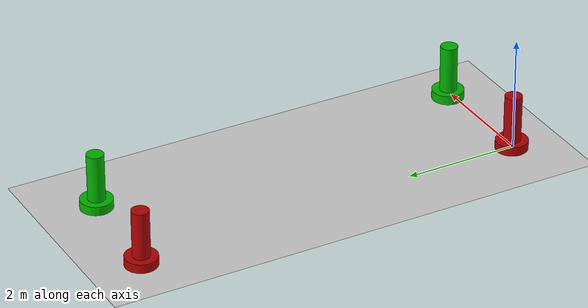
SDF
<?xml version='1.0' encoding='ASCII'?>
<sdf version='1.6'>
  <world name='default'>
    <gui fullscreen='false'>
      <camera name='user_camera'>
        <pose>6.90191 -4.1168 2.2611 0 0.275643 2.3562</pose>
        <view_controller>orbit</view_controller>
        <projection_type>perspective</projection_type>
      </camera>
    </gui>
    <light name='sun' type='directional'>
      <cast_shadows>1</cast_shadows>
      <pose>0 0 10 0 -0 0</pose>
      <diffuse>0.8 0.8 0.8 1</diffuse>
      <specular>0.2 0.2 0.2 1</specular>
      <attenuation>
        <range>1000</range>
        <constant>0.9</constant>
        <linear>0.01</linear>
        <quadratic>0.001</quadratic>
      </attenuation>
      <direction>-0.5 0.1 -0.9</direction>
      <spot>
        <inner_angle>0</inner_angle>
        <outer_angle>0</outer_angle>
        <falloff>0</falloff>
      </spot>
    </light>
    <model name='ground_plane'>
      <static>1</static>
      <link name='link'>
        <collision name='collision'>
          <geometry>
            <plane>
              <normal>0 0 1</normal>
              <size>100 100</size>
            </plane>
          </geometry>
          <surface>
            <contact>
              <collide_bitmask>65535</collide_bitmask>
              <ode/>
            </contact>
            <friction>
              <ode>
                <mu>100</mu>
                <mu2>50</mu2>
              </ode>
              <torsional>
                <ode/>
              </torsional>
            </friction>
            <bounce/>
          </surface>
          <max_contacts>10</max_contacts>
        </collision>
        <visual name='visual'>
          <cast_shadows>0</cast_shadows>
          <geometry>
            <plane>
              <normal>0 0 1</normal>
              <size>100 100</size>
            </plane>
          </geometry>
          <material>
            <script>
              <uri>file://media/materials/scripts/gazebo.material</uri>
              <name>Gazebo/Grey</name>
            </script>
          </material>
        </visual>
        <self_collide>0</self_collide>
        <enable_wind>0</enable_wind>
        <kinematic>0</kinematic>
      </link>
    </model>
    <gravity>0 0 -9.8</gravity>
    <magnetic_field>6e-06 2.3e-05 -4.2e-05</magnetic_field>
    <atmosphere type='adiabatic'/>
    <physics type='ode'>
      <max_step_size>0.001</max_step_size>
      <real_time_factor>1</real_time_factor>
      <real_time_update_rate>1000</real_time_update_rate>
    </physics>
    <scene>
      <ambient>0.4 0.4 0.4 1</ambient>
      <background>0.7 0.7 0.7 1</background>
      <shadows>1</shadows>
    </scene>
    <wind/>
    <spherical_coordinates>
      <surface_model>EARTH_WGS84</surface_model>
      <latitude_deg>0</latitude_deg>
      <longitude_deg>0</longitude_deg>
      <elevation>0</elevation>
      <heading_deg>0</heading_deg>
    </spherical_coordinates>
    <model name='Bouyo_red'>
      <link name='link_1'>
        <inertial>
          <mass>0.068793</mass>
          <inertia>
            <ixx>0.00543853</ixx>
            <ixy>0</ixy>
            <ixz>0</ixz>
            <iyy>0.00543853</iyy>
            <iyz>0</iyz>
            <izz>0.0006256</izz>
          </inertia>
          <pose>0 0 0 0 -0 0</pose>
        </inertial>
        <pose>0.396646 -0.775352 0.496472 0 -0 0</pose>
        <gravity>1</gravity>
        <self_collide>0</self_collide>
        <kinematic>0</kinematic>
        <enable_wind>0</enable_wind>
        <visual name='visual'>
          <pose>0 0 0 0 -0 0</pose>
          <geometry>
            <cylinder>
              <radius>0.15</radius>
              <length>1</length>
            </cylinder>
          </geometry>
          <material>
            <lighting>1</lighting>
            <script>
              <uri>file://media/materials/scripts/gazebo.material</uri>
              <name>Gazebo/Grey</name>
            </script>
            <shader type='pixel'>
              <normal_map>__default__</normal_map>
            </shader>
            <ambient>0.3 0.3 0.3 1</ambient>
            <diffuse>0.7 0 0 1</diffuse>
            <specular>0.01 0.01 0.01 1</specular>
            <emissive>0 0 0 1</emissive>
          </material>
          <transparency>0</transparency>
          <cast_shadows>1</cast_shadows>
        </visual>
        <collision name='collision'>
          <laser_retro>0</laser_retro>
          <max_contacts>10</max_contacts>
          <pose>0 0 0 0 -0 0</pose>
          <geometry>
            <cylinder>
              <radius>0.3</radius>
              <length>0.945576</length>
            </cylinder>
          </geometry>
          <surface>
            <friction>
              <ode>
                <mu>1</mu>
                <mu2>1</mu2>
                <fdir1>0 0 0</fdir1>
                <slip1>0</slip1>
                <slip2>0</slip2>
              </ode>
              <torsional>
                <coefficient>1</coefficient>
                <patch_radius>0</patch_radius>
                <surface_radius>0</surface_radius>
                <use_patch_radius>1</use_patch_radius>
                <ode>
                  <slip>0</slip>
                </ode>
              </torsional>
            </friction>
            <bounce>
              <restitution_coefficient>0</restitution_coefficient>
              <threshold>1e+06</threshold>
            </bounce>
            <contact>
              <collide_without_contact>0</collide_without_contact>
              <collide_without_contact_bitmask>1</collide_without_contact_bitmask>
              <collide_bitmask>1</collide_bitmask>
              <ode>
                <soft_cfm>0</soft_cfm>
                <soft_erp>0.2</soft_erp>
                <kp>1e+13</kp>
                <kd>1</kd>
                <max_vel>0.01</max_vel>
                <min_depth>0</min_depth>
              </ode>
              <bullet>
                <split_impulse>1</split_impulse>
                <split_impulse_penetration_threshold>-0.01</split_impulse_penetration_threshold>
                <soft_cfm>0</soft_cfm>
                <soft_erp>0.2</soft_erp>
                <kp>1e+13</kp>
                <kd>1</kd>
              </bullet>
            </contact>
          </surface>
        </collision>
      </link>
      <link name='link_3'>
        <inertial>
          <mass>0.0961519</mass>
          <inertia>
            <ixx>0.00264433</ixx>
            <ixy>0</ixy>
            <ixz>0</ixz>
            <iyy>0.00264433</iyy>
            <iyz>0</iyz>
            <izz>0.00382696</izz>
          </inertia>
          <pose>0 0 0 0 -0 0</pose>
        </inertial>
        <pose>0.399215 -0.772784 0.003528 0 -0 0</pose>
        <gravity>1</gravity>
        <self_collide>0</self_collide>
        <kinematic>0</kinematic>
        <enable_wind>0</enable_wind>
        <visual name='visual'>
          <pose>0 0 0 0 -0 0</pose>
          <geometry>
            <cylinder>
              <radius>0.282139</radius>
              <length>0.302013</length>
            </cylinder>
          </geometry>
          <material>
            <lighting>1</lighting>
            <script>
              <uri>file://media/materials/scripts/gazebo.material</uri>
              <name>Gazebo/Grey</name>
            </script>
            <shader type='pixel'>
              <normal_map>__default__</normal_map>
            </shader>
            <ambient>0.3 0.3 0.3 1</ambient>
            <diffuse>0.7 0 0 1</diffuse>
            <specular>0.01 0.01 0.01 1</specular>
            <emissive>0 0 0 1</emissive>
          </material>
          <transparency>0</transparency>
          <cast_shadows>1</cast_shadows>
        </visual>
        <collision name='collision'>
          <laser_retro>0</laser_retro>
          <max_contacts>10</max_contacts>
          <pose>0 0 0 0 -0 0</pose>
          <geometry>
            <cylinder>
              <radius>0.282139</radius>
              <length>0.302013</length>
            </cylinder>
          </geometry>
          <surface>
            <friction>
              <ode>
                <mu>1</mu>
                <mu2>1</mu2>
                <fdir1>0 0 0</fdir1>
                <slip1>0</slip1>
                <slip2>0</slip2>
              </ode>
              <torsional>
                <coefficient>1</coefficient>
                <patch_radius>0</patch_radius>
                <surface_radius>0</surface_radius>
                <use_patch_radius>1</use_patch_radius>
                <ode>
                  <slip>0</slip>
                </ode>
              </torsional>
            </friction>
            <bounce>
              <restitution_coefficient>0</restitution_coefficient>
              <threshold>1e+06</threshold>
            </bounce>
            <contact>
              <collide_without_contact>0</collide_without_contact>
              <collide_without_contact_bitmask>1</collide_without_contact_bitmask>
              <collide_bitmask>1</collide_bitmask>
              <ode>
                <soft_cfm>0</soft_cfm>
                <soft_erp>0.2</soft_erp>
                <kp>1e+13</kp>
                <kd>1</kd>
                <max_vel>0.01</max_vel>
                <min_depth>0</min_depth>
              </ode>
              <bullet>
                <split_impulse>1</split_impulse>
                <split_impulse_penetration_threshold>-0.01</split_impulse_penetration_threshold>
                <soft_cfm>0</soft_cfm>
                <soft_erp>0.2</soft_erp>
                <kp>1e+13</kp>
                <kd>1</kd>
              </bullet>
            </contact>
          </surface>
        </collision>
      </link>
      <static>0</static>
      <allow_auto_disable>1</allow_auto_disable>
      <pose>-0.410253 0.804437 0.003528 0 -0 0</pose>
    </model>
    <model name='Bouyo'>
      <link name='link_1'>
        <inertial>
          <mass>0.068793</mass>
          <inertia>
            <ixx>0.00543853</ixx>
            <ixy>0</ixy>
            <ixz>0</ixz>
            <iyy>0.00543853</iyy>
            <iyz>0</iyz>
            <izz>0.0006256</izz>
          </inertia>
          <pose>0 0 0 0 -0 0</pose>
        </inertial>
        <pose>0.396646 -0.775352 0.496472 0 -0 0</pose>
        <gravity>1</gravity>
        <self_collide>0</self_collide>
        <kinematic>0</kinematic>
        <enable_wind>0</enable_wind>
        <visual name='visual'>
          <pose>0 0 0 0 -0 0</pose>
          <geometry>
            <cylinder>
              <radius>0.15</radius>
              <length>1</length>
            </cylinder>
          </geometry>
          <material>
            <lighting>1</lighting>
            <script>
              <uri>file://media/materials/scripts/gazebo.material</uri>
              <name>Gazebo/Grey</name>
            </script>
            <shader type='pixel'>
              <normal_map>__default__</normal_map>
            </shader>
            <ambient>0.3 0.3 0.3 1</ambient>
            <diffuse>0 0.7 0 1</diffuse>
            <specular>0.01 0.01 0.01 1</specular>
            <emissive>0 0 0 1</emissive>
          </material>
          <transparency>0</transparency>
          <cast_shadows>1</cast_shadows>
        </visual>
        <collision name='collision'>
          <laser_retro>0</laser_retro>
          <max_contacts>10</max_contacts>
          <pose>0 0 0 0 -0 0</pose>
          <geometry>
            <cylinder>
              <radius>0.3</radius>
              <length>0.945576</length>
            </cylinder>
          </geometry>
          <surface>
            <friction>
              <ode>
                <mu>1</mu>
                <mu2>1</mu2>
                <fdir1>0 0 0</fdir1>
                <slip1>0</slip1>
                <slip2>0</slip2>
              </ode>
              <torsional>
                <coefficient>1</coefficient>
                <patch_radius>0</patch_radius>
                <surface_radius>0</surface_radius>
                <use_patch_radius>1</use_patch_radius>
                <ode>
                  <slip>0</slip>
                </ode>
              </torsional>
            </friction>
            <bounce>
              <restitution_coefficient>0</restitution_coefficient>
              <threshold>1e+06</threshold>
            </bounce>
            <contact>
              <collide_without_contact>0</collide_without_contact>
              <collide_without_contact_bitmask>1</collide_without_contact_bitmask>
              <collide_bitmask>1</collide_bitmask>
              <ode>
                <soft_cfm>0</soft_cfm>
                <soft_erp>0.2</soft_erp>
                <kp>1e+13</kp>
                <kd>1</kd>
                <max_vel>0.01</max_vel>
                <min_depth>0</min_depth>
              </ode>
              <bullet>
                <split_impulse>1</split_impulse>
                <split_impulse_penetration_threshold>-0.01</split_impulse_penetration_threshold>
                <soft_cfm>0</soft_cfm>
                <soft_erp>0.2</soft_erp>
                <kp>1e+13</kp>
                <kd>1</kd>
              </bullet>
            </contact>
          </surface>
        </collision>
      </link>
      <link name='link_3'>
        <inertial>
          <mass>0.0961519</mass>
          <inertia>
            <ixx>0.00264433</ixx>
            <ixy>0</ixy>
            <ixz>0</ixz>
            <iyy>0.00264433</iyy>
            <iyz>0</iyz>
            <izz>0.00382696</izz>
          </inertia>
          <pose>0 0 0 0 -0 0</pose>
        </inertial>
        <pose>0.399215 -0.772784 0.003528 0 -0 0</pose>
        <gravity>1</gravity>
        <self_collide>0</self_collide>
        <kinematic>0</kinematic>
        <enable_wind>0</enable_wind>
        <visual name='visual'>
          <pose>0 0 0 0 -0 0</pose>
          <geometry>
            <cylinder>
              <radius>0.282139</radius>
              <length>0.302013</length>
            </cylinder>
          </geometry>
          <material>
            <lighting>1</lighting>
            <script>
              <uri>file://media/materials/scripts/gazebo.material</uri>
              <name>Gazebo/Grey</name>
            </script>
            <shader type='pixel'>
              <normal_map>__default__</normal_map>
            </shader>
            <ambient>0.3 0.3 0.3 1</ambient>
            <diffuse>0 0.7 0 1</diffuse>
            <specular>0.01 0.01 0.01 1</specular>
            <emissive>0 0 0 1</emissive>
          </material>
          <transparency>0</transparency>
          <cast_shadows>1</cast_shadows>
        </visual>
        <collision name='collision'>
          <laser_retro>0</laser_retro>
          <max_contacts>10</max_contacts>
          <pose>0 0 0 0 -0 0</pose>
          <geometry>
            <cylinder>
              <radius>0.282139</radius>
              <length>0.302013</length>
            </cylinder>
          </geometry>
          <surface>
            <friction>
              <ode>
                <mu>1</mu>
                <mu2>1</mu2>
                <fdir1>0 0 0</fdir1>
                <slip1>0</slip1>
                <slip2>0</slip2>
              </ode>
              <torsional>
                <coefficient>1</coefficient>
                <patch_radius>0</patch_radius>
                <surface_radius>0</surface_radius>
                <use_patch_radius>1</use_patch_radius>
                <ode>
                  <slip>0</slip>
                </ode>
              </torsional>
            </friction>
            <bounce>
              <restitution_coefficient>0</restitution_coefficient>
              <threshold>1e+06</threshold>
            </bounce>
            <contact>
              <collide_without_contact>0</collide_without_contact>
              <collide_without_contact_bitmask>1</collide_without_contact_bitmask>
              <collide_bitmask>1</collide_bitmask>
              <ode>
                <soft_cfm>0</soft_cfm>
                <soft_erp>0.2</soft_erp>
                <kp>1e+13</kp>
                <kd>1</kd>
                <max_vel>0.01</max_vel>
                <min_depth>0</min_depth>
              </ode>
              <bullet>
                <split_impulse>1</split_impulse>
                <split_impulse_penetration_threshold>-0.01</split_impulse_penetration_threshold>
                <soft_cfm>0</soft_cfm>
                <soft_erp>0.2</soft_erp>
                <kp>1e+13</kp>
                <kd>1</kd>
              </bullet>
            </contact>
          </surface>
        </collision>
      </link>
      <static>0</static>
      <allow_auto_disable>1</allow_auto_disable>
      <pose>1.57263 0.860683 0 0 -0 0</pose>
    </model>
    <model name='Bouyo_red_0'>
      <link name='link_1'>
        <inertial>
          <mass>0.068793</mass>
          <inertia>
            <ixx>0.00543853</ixx>
            <ixy>0</ixy>
            <ixz>0</ixz>
            <iyy>0.00543853</iyy>
            <iyz>0</iyz>
            <izz>0.0006256</izz>
          </inertia>
          <pose>0 0 0 0 -0 0</pose>
        </inertial>
        <pose>0.396646 -0.775352 0.496472 0 -0 0</pose>
        <gravity>1</gravity>
        <self_collide>0</self_collide>
        <kinematic>0</kinematic>
        <enable_wind>0</enable_wind>
        <visual name='visual'>
          <pose>0 0 0 0 -0 0</pose>
          <geometry>
            <cylinder>
              <radius>0.15</radius>
              <length>1</length>
            </cylinder>
          </geometry>
          <material>
            <lighting>1</lighting>
            <script>
              <uri>file://media/materials/scripts/gazebo.material</uri>
              <name>Gazebo/Grey</name>
            </script>
            <shader type='pixel'>
              <normal_map>__default__</normal_map>
            </shader>
            <ambient>0.3 0.3 0.3 1</ambient>
            <diffuse>0.7 0 0 1</diffuse>
            <specular>0.01 0.01 0.01 1</specular>
            <emissive>0 0 0 1</emissive>
          </material>
          <transparency>0</transparency>
          <cast_shadows>1</cast_shadows>
        </visual>
        <collision name='collision'>
          <laser_retro>0</laser_retro>
          <max_contacts>10</max_contacts>
          <pose>0 0 0 0 -0 0</pose>
          <geometry>
            <cylinder>
              <radius>0.3</radius>
              <length>0.945576</length>
            </cylinder>
          </geometry>
          <surface>
            <friction>
              <ode>
                <mu>1</mu>
                <mu2>1</mu2>
                <fdir1>0 0 0</fdir1>
                <slip1>0</slip1>
                <slip2>0</slip2>
              </ode>
              <torsional>
                <coefficient>1</coefficient>
                <patch_radius>0</patch_radius>
                <surface_radius>0</surface_radius>
                <use_patch_radius>1</use_patch_radius>
                <ode>
                  <slip>0</slip>
                </ode>
              </torsional>
            </friction>
            <bounce>
              <restitution_coefficient>0</restitution_coefficient>
              <threshold>1e+06</threshold>
            </bounce>
            <contact>
              <collide_without_contact>0</collide_without_contact>
              <collide_without_contact_bitmask>1</collide_without_contact_bitmask>
              <collide_bitmask>1</collide_bitmask>
              <ode>
                <soft_cfm>0</soft_cfm>
                <soft_erp>0.2</soft_erp>
                <kp>1e+13</kp>
                <kd>1</kd>
                <max_vel>0.01</max_vel>
                <min_depth>0</min_depth>
              </ode>
              <bullet>
                <split_impulse>1</split_impulse>
                <split_impulse_penetration_threshold>-0.01</split_impulse_penetration_threshold>
                <soft_cfm>0</soft_cfm>
                <soft_erp>0.2</soft_erp>
                <kp>1e+13</kp>
                <kd>1</kd>
              </bullet>
            </contact>
          </surface>
        </collision>
      </link>
      <link name='link_3'>
        <inertial>
          <mass>0.0961519</mass>
          <inertia>
            <ixx>0.00264433</ixx>
            <ixy>0</ixy>
            <ixz>0</ixz>
            <iyy>0.00264433</iyy>
            <iyz>0</iyz>
            <izz>0.00382696</izz>
          </inertia>
          <pose>0 0 0 0 -0 0</pose>
        </inertial>
        <pose>0.399215 -0.772784 0.003528 0 -0 0</pose>
        <gravity>1</gravity>
        <self_collide>0</self_collide>
        <kinematic>0</kinematic>
        <enable_wind>0</enable_wind>
        <visual name='visual'>
          <pose>0 0 0 0 -0 0</pose>
          <geometry>
            <cylinder>
              <radius>0.282139</radius>
              <length>0.302013</length>
            </cylinder>
          </geometry>
          <material>
            <lighting>1</lighting>
            <script>
              <uri>file://media/materials/scripts/gazebo.material</uri>
              <name>Gazebo/Grey</name>
            </script>
            <shader type='pixel'>
              <normal_map>__default__</normal_map>
            </shader>
            <ambient>0.3 0.3 0.3 1</ambient>
            <diffuse>0.7 0 0 1</diffuse>
            <specular>0.01 0.01 0.01 1</specular>
            <emissive>0 0 0 1</emissive>
          </material>
          <transparency>0</transparency>
          <cast_shadows>1</cast_shadows>
        </visual>
        <collision name='collision'>
          <laser_retro>0</laser_retro>
          <max_contacts>10</max_contacts>
          <pose>0 0 0 0 -0 0</pose>
          <geometry>
            <cylinder>
              <radius>0.282139</radius>
              <length>0.302013</length>
            </cylinder>
          </geometry>
          <surface>
            <friction>
              <ode>
                <mu>1</mu>
                <mu2>1</mu2>
                <fdir1>0 0 0</fdir1>
                <slip1>0</slip1>
                <slip2>0</slip2>
              </ode>
              <torsional>
                <coefficient>1</coefficient>
                <patch_radius>0</patch_radius>
                <surface_radius>0</surface_radius>
                <use_patch_radius>1</use_patch_radius>
                <ode>
                  <slip>0</slip>
                </ode>
              </torsional>
            </friction>
            <bounce>
              <restitution_coefficient>0</restitution_coefficient>
              <threshold>1e+06</threshold>
            </bounce>
            <contact>
              <collide_without_contact>0</collide_without_contact>
              <collide_without_contact_bitmask>1</collide_without_contact_bitmask>
              <collide_bitmask>1</collide_bitmask>
              <ode>
                <soft_cfm>0</soft_cfm>
                <soft_erp>0.2</soft_erp>
                <kp>1e+13</kp>
                <kd>1</kd>
                <max_vel>0.01</max_vel>
                <min_depth>0</min_depth>
              </ode>
              <bullet>
                <split_impulse>1</split_impulse>
                <split_impulse_penetration_threshold>-0.01</split_impulse_penetration_threshold>
                <soft_cfm>0</soft_cfm>
                <soft_erp>0.2</soft_erp>
                <kp>1e+13</kp>
                <kd>1</kd>
              </bullet>
            </contact>
          </surface>
        </collision>
      </link>
      <static>0</static>
      <allow_auto_disable>1</allow_auto_disable>
      <pose>-0.619924 7.83829 0 0 -0 0</pose>
    </model>
    <model name='Bouyo_0'>
      <link name='link_1'>
        <inertial>
          <mass>0.068793</mass>
          <inertia>
            <ixx>0.00543853</ixx>
            <ixy>0</ixy>
            <ixz>0</ixz>
            <iyy>0.00543853</iyy>
            <iyz>0</iyz>
            <izz>0.0006256</izz>
          </inertia>
          <pose>0 0 0 0 -0 0</pose>
        </inertial>
        <pose>0.396646 -0.775352 0.496472 0 -0 0</pose>
        <gravity>1</gravity>
        <self_collide>0</self_collide>
        <kinematic>0</kinematic>
        <enable_wind>0</enable_wind>
        <visual name='visual'>
          <pose>0 0 0 0 -0 0</pose>
          <geometry>
            <cylinder>
              <radius>0.15</radius>
              <length>1</length>
            </cylinder>
          </geometry>
          <material>
            <lighting>1</lighting>
            <script>
              <uri>file://media/materials/scripts/gazebo.material</uri>
              <name>Gazebo/Grey</name>
            </script>
            <shader type='pixel'>
              <normal_map>__default__</normal_map>
            </shader>
            <ambient>0.3 0.3 0.3 1</ambient>
            <diffuse>0 0.7 0 1</diffuse>
            <specular>0.01 0.01 0.01 1</specular>
            <emissive>0 0 0 1</emissive>
          </material>
          <transparency>0</transparency>
          <cast_shadows>1</cast_shadows>
        </visual>
        <collision name='collision'>
          <laser_retro>0</laser_retro>
          <max_contacts>10</max_contacts>
          <pose>0 0 0 0 -0 0</pose>
          <geometry>
            <cylinder>
              <radius>0.3</radius>
              <length>0.945576</length>
            </cylinder>
          </geometry>
          <surface>
            <friction>
              <ode>
                <mu>1</mu>
                <mu2>1</mu2>
                <fdir1>0 0 0</fdir1>
                <slip1>0</slip1>
                <slip2>0</slip2>
              </ode>
              <torsional>
                <coefficient>1</coefficient>
                <patch_radius>0</patch_radius>
                <surface_radius>0</surface_radius>
                <use_patch_radius>1</use_patch_radius>
                <ode>
                  <slip>0</slip>
                </ode>
              </torsional>
            </friction>
            <bounce>
              <restitution_coefficient>0</restitution_coefficient>
              <threshold>1e+06</threshold>
            </bounce>
            <contact>
              <collide_without_contact>0</collide_without_contact>
              <collide_without_contact_bitmask>1</collide_without_contact_bitmask>
              <collide_bitmask>1</collide_bitmask>
              <ode>
                <soft_cfm>0</soft_cfm>
                <soft_erp>0.2</soft_erp>
                <kp>1e+13</kp>
                <kd>1</kd>
                <max_vel>0.01</max_vel>
                <min_depth>0</min_depth>
              </ode>
              <bullet>
                <split_impulse>1</split_impulse>
                <split_impulse_penetration_threshold>-0.01</split_impulse_penetration_threshold>
                <soft_cfm>0</soft_cfm>
                <soft_erp>0.2</soft_erp>
                <kp>1e+13</kp>
                <kd>1</kd>
              </bullet>
            </contact>
          </surface>
        </collision>
      </link>
      <link name='link_3'>
        <inertial>
          <mass>0.0961519</mass>
          <inertia>
            <ixx>0.00264433</ixx>
            <ixy>0</ixy>
            <ixz>0</ixz>
            <iyy>0.00264433</iyy>
            <iyz>0</iyz>
            <izz>0.00382696</izz>
          </inertia>
          <pose>0 0 0 0 -0 0</pose>
        </inertial>
        <pose>0.399215 -0.772784 0.003528 0 -0 0</pose>
        <gravity>1</gravity>
        <self_collide>0</self_collide>
        <kinematic>0</kinematic>
        <enable_wind>0</enable_wind>
        <visual name='visual'>
          <pose>0 0 0 0 -0 0</pose>
          <geometry>
            <cylinder>
              <radius>0.282139</radius>
              <length>0.302013</length>
            </cylinder>
          </geometry>
          <material>
            <lighting>1</lighting>
            <script>
              <uri>file://media/materials/scripts/gazebo.material</uri>
              <name>Gazebo/Grey</name>
            </script>
            <shader type='pixel'>
              <normal_map>__default__</normal_map>
            </shader>
            <ambient>0.3 0.3 0.3 1</ambient>
            <diffuse>0 0.7 0 1</diffuse>
            <specular>0.01 0.01 0.01 1</specular>
            <emissive>0 0 0 1</emissive>
          </material>
          <transparency>0</transparency>
          <cast_shadows>1</cast_shadows>
        </visual>
        <collision name='collision'>
          <laser_retro>0</laser_retro>
          <max_contacts>10</max_contacts>
          <pose>0 0 0 0 -0 0</pose>
          <geometry>
            <cylinder>
              <radius>0.282139</radius>
              <length>0.302013</length>
            </cylinder>
          </geometry>
          <surface>
            <friction>
              <ode>
                <mu>1</mu>
                <mu2>1</mu2>
                <fdir1>0 0 0</fdir1>
                <slip1>0</slip1>
                <slip2>0</slip2>
              </ode>
              <torsional>
                <coefficient>1</coefficient>
                <patch_radius>0</patch_radius>
                <surface_radius>0</surface_radius>
                <use_patch_radius>1</use_patch_radius>
                <ode>
                  <slip>0</slip>
                </ode>
              </torsional>
            </friction>
            <bounce>
              <restitution_coefficient>0</restitution_coefficient>
              <threshold>1e+06</threshold>
            </bounce>
            <contact>
              <collide_without_contact>0</collide_without_contact>
              <collide_without_contact_bitmask>1</collide_without_contact_bitmask>
              <collide_bitmask>1</collide_bitmask>
              <ode>
                <soft_cfm>0</soft_cfm>
                <soft_erp>0.2</soft_erp>
                <kp>1e+13</kp>
                <kd>1</kd>
                <max_vel>0.01</max_vel>
                <min_depth>0</min_depth>
              </ode>
              <bullet>
                <split_impulse>1</split_impulse>
                <split_impulse_penetration_threshold>-0.01</split_impulse_penetration_threshold>
                <soft_cfm>0</soft_cfm>
                <soft_erp>0.2</soft_erp>
                <kp>1e+13</kp>
                <kd>1</kd>
              </bullet>
            </contact>
          </surface>
        </collision>
      </link>
      <static>0</static>
      <allow_auto_disable>1</allow_auto_disable>
      <pose>1.26679 7.71572 0 0 -0 0</pose>
    </model>
  </world>
</sdf>
